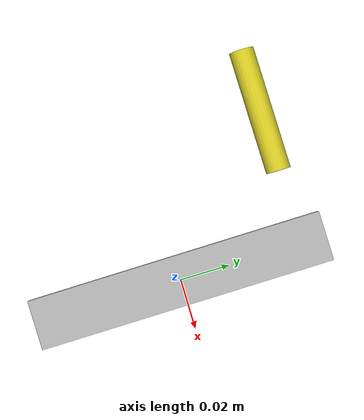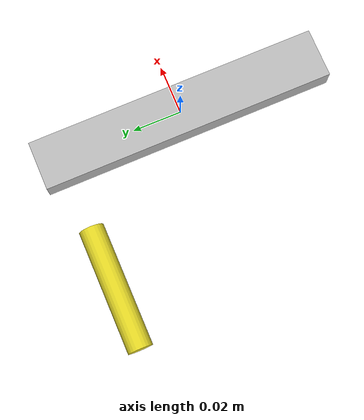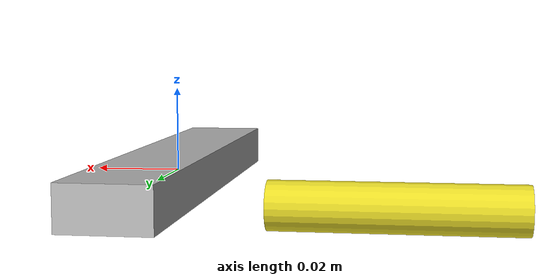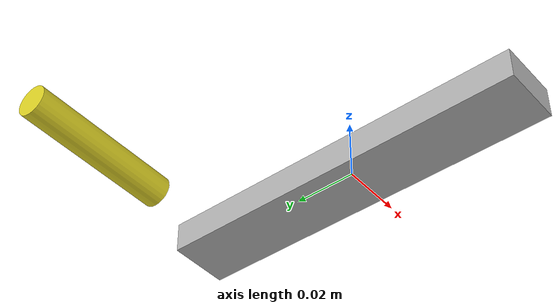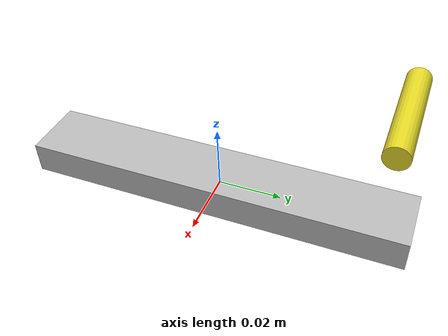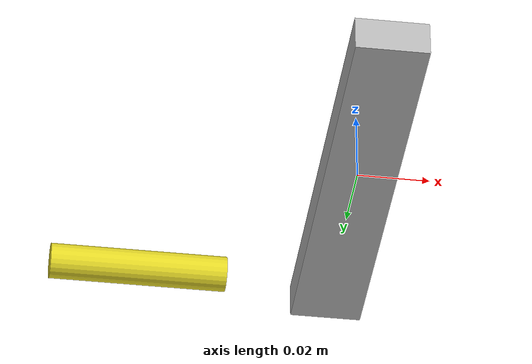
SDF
<?xml version='1.0'?>
    <sdf version='1.6'>
      <model name="simplebot">
        <static>false</static>

        <link name='base_link'>
          <pose>0 0 0 0 0 0</pose>

          <inertial>
            <mass>10</mass>
            <inertia>
              <ixx>0.166667</ixx>
              <ixy>0</ixy>
              <ixz>0</ixz>
            <iyy>0.166667</iyy>
              <iyz>0</iyz>
              <izz>0.166667</izz>
            </inertia>
            <pose frame=''>0 0 0 0 -0 0</pose>
          </inertial>

          <collision name='collision'>
            <geometry>
              <box>
                <size>.02 0.12 .01</size>
              </box>
            </geometry>
          </collision>

          <visual name='visual'>
            <geometry>
              <box>
                <size>.02 0.12 .01</size>
              </box>
            </geometry>
          </visual>

        <sensor type="camera" name="camera1">
          <pose>0 0 0 0 0 0</pose>
          <visualize>false</visualize>
          <update_rate>40</update_rate>

          <plugin name="camera_controller" filename="libgazebo_ros_camera.so">
            <alwaysOn>true</alwaysOn>
            <updateRate>0.0</updateRate>
            <cameraName>/camera</cameraName>
            <imageTopicName>image_raw</imageTopicName>
            <cameraInfoTopicName>camera_info</cameraInfoTopicName>
            <frameName>camera_link</frameName>
            <hackBaseline>0.07</hackBaseline>
            <distortionK1>0.0</distortionK1>
            <distortionK2>0.0</distortionK2>
            <distortionK3>0.0</distortionK3>
            <distortionT1>0.0</distortionT1>
            <distortionT2>0.0</distortionT2>
          </plugin>
        </sensor>

      </link>

    <link name="flHip">
        <pose>-.055 .05 0 0 1.5708 0</pose>
        <collision name="collision">
          <geometry>
            <cylinder>
              <radius>.005</radius>
              <length>.05</length>
            </cylinder>
          </geometry>
        </collision>
        <visual name="visual">
          <geometry>
            <cylinder>
              <radius>.005</radius>
              <length>.05</length>
            </cylinder>
          </geometry>
           <material>
          <script>
            <uri>file://media/materials/scripts/gazebo.material</uri>
            <name>Gazebo/Yellow</name>
          </script>
        </material>
        </visual>
      </link>

      <joint type="revolute" name="flHip_joint">
        <pose>-.03 .05 0 0 0 0</pose>
        <child>flHip</child>
        <parent>base_link</parent>
        <axis>
          <xyz>0 0 1</xyz>
            <limit>
            <lower>-2.61799</lower>
            <upper>1.98395</upper>
            <effort>300</effort>
            <velocity>1</velocity>
            </limit>
            <dynamics>
              <damping>50</damping>
            </dynamics>
        </axis>
      </joint>

      <!-- leg controller -->

      <plugin name='leg_controller' filename='libgazebo_ros_control.so'>
         <robotNamespace>/simplebot</robotNamespace>
      </plugin>

      <!-- world camera? -->

      <joint name="fixed to ground" type="revolute">
        <parent>base_link</parent>
        <child>camera_link</child>
        <axis>
        <limit>
          <lower>0</lower>
          <upper>0</upper>
        </limit>
        <xyz>0 0 1</xyz>
        </axis>
      </joint>

  </model>
</sdf>
